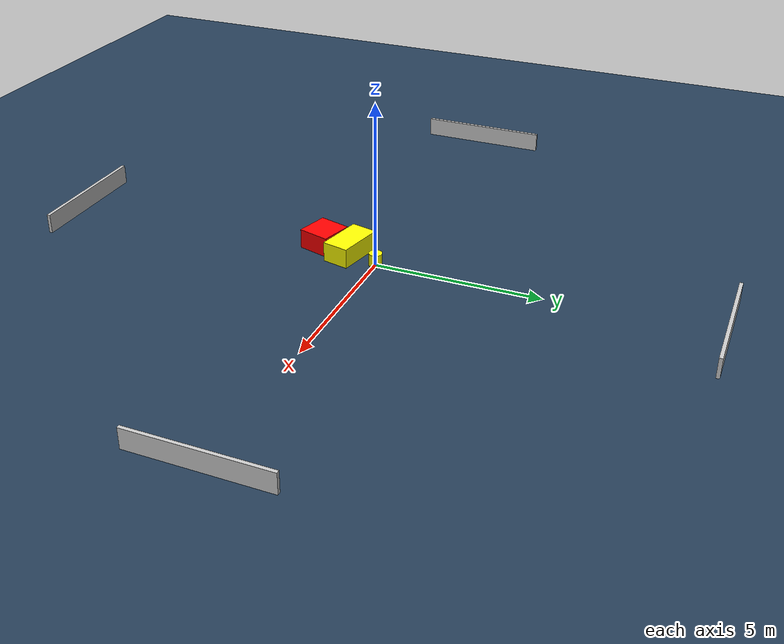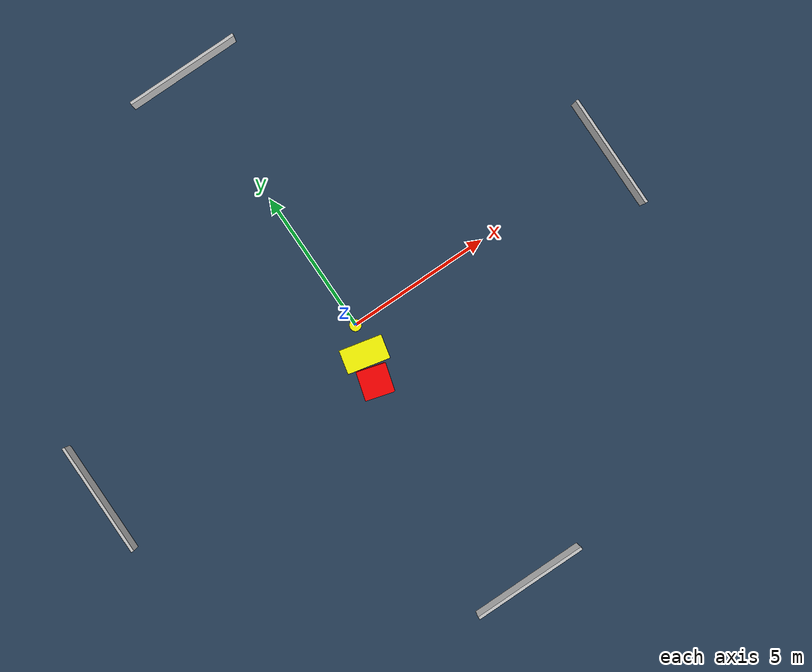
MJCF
<?xml version="1.0" ?>
<mujoco model="generated_environment">
  <option timestep="0.01" integrator="RK4" cone="elliptic"/>
  <default>
    <geom density="1"/>
  </default>
  <asset>
    <texture builtin="gradient" height="3072" name="skybox" rgb1="0.3 0.5 0.7" rgb2="0 0 0" type="skybox" width="512"/>
    <texture builtin="checker" height="300" name="groundplane" rgb1="0.2 0.3 0.4" rgb2="0.1 0.2 0.3" type="2d" width="300"/>
    <material name="groundplane" reflectance="0.2" texrepeat="5 5" texture="groundplane"/>
  </asset>
  <worldbody>
    <light dir="0 0 -1" directional="true" pos="0 0 1.5"/>
    <geom condim="3" friction="0.5 0.005 0.001" material="groundplane" name="floor" pos="0 0 0" size="0 0 0.05" type="plane"/>
    <body name="walls">
      <geom name="wall_1" condim="4" pos="-10.0 0.0 0.3" rgba="0.800000011920929 0.800000011920929 0.800000011920929 1.0" size="0.05 2.0 0.3" type="box"/>
      <geom name="wall_2" condim="4" pos="10.0 0.0 0.3" rgba="0.800000011920929 0.800000011920929 0.800000011920929 1.0" size="0.05 2.0 0.3" type="box"/>
      <geom name="wall_3" condim="4" pos="0.0 -10.0 0.3" rgba="0.800000011920929 0.800000011920929 0.800000011920929 1.0" size="2.0 0.05 0.3" type="box"/>
      <geom name="wall_4" condim="4" pos="0.0 10.0 0.3" rgba="0.800000011920929 0.800000011920929 0.800000011920929 1.0" size="2.0 0.05 0.3" type="box"/>
    </body>
    <body name="robot">
      <joint name="joint_x" type="slide" pos="0 0 0" axis="1 0 0"/>
      <joint name="joint_y" type="slide" pos="0 0 0" axis="0 1 0"/>
      <geom name="robot" type="cylinder" pos="0.0 0.0 0.2" size="0.2 0.2 0.0" mass="5.0" friction="1.0 0.005 0.0001" condim="4" rgba="1.0 1.0 0.0 1.0"/>
    </body>
    <body name="obstacle_1_movable">
      <geom name="obstacle_1_movable" condim="4" pos="-0.28660794449137655 -0.9450352718527355 0.3" euler="0 0 167.33893716728488" friction="0.0 0.005 0.001" rgba="1.0 1.0 0.0 1.0" size="0.7322238991230281 0.4070711169632051 0.3" type="box" mass="0.1"/>
      <joint type="free"/>
    </body>
    <body name="obstacle_2_static">
      <geom name="obstacle_2_static" condim="4" pos="-0.4920195724085922 -1.8727716192556123 0.3" euler="0 0 344.4240728918356" friction="0.0 0.005 0.001" rgba="1.0 0.0 0.0 1.0" size="0.5041532196319897 0.4892210610210931 0.3" type="box"/>
    </body>
  </worldbody>
  <actuator>
    <motor name="actuator_x" joint="joint_x" gear="1" ctrlrange="-1 1"/>
    <motor name="actuator_y" joint="joint_y" gear="1" ctrlrange="-1 1"/>
  </actuator>
</mujoco>
